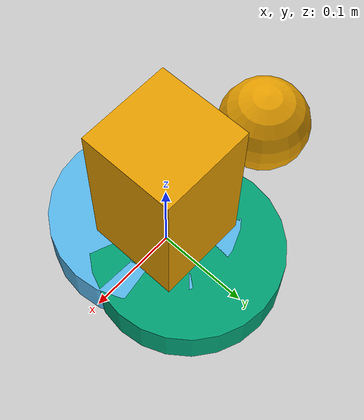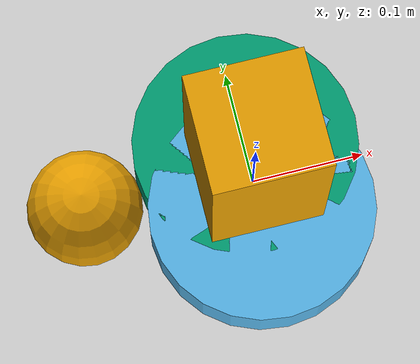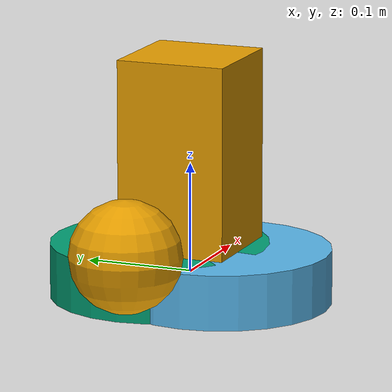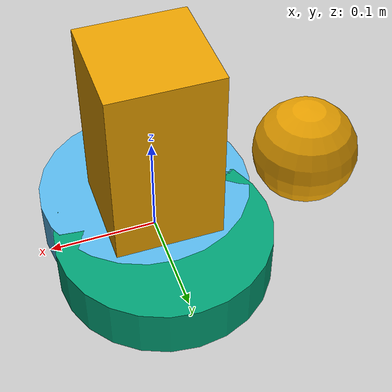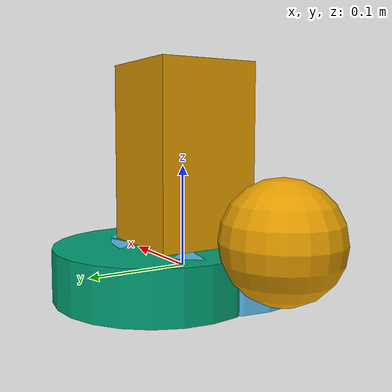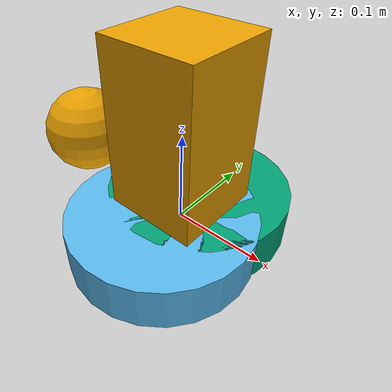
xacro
<?xml version="1.0"?>

<robot name="pioneer" xmlns:xacro="http://ros.org/wiki/xacro">
  <xacro:property name="mass" value="0.5755" />
  <xacro:property name="body_width" value="0.1" />
  <xacro:property name="body_height" value="0.2" />
  <xacro:property name="body_length" value="0.4" />
  <xacro:property name="wheel_radius" value="0.1" />
  <xacro:property name="wheel_length" value="0.06" />
  <xacro:property name="caster_radius" value="0.05" />
  <xacro:property name="body_inertia">
    <inertia ixx="0.007" ixy="0.0" ixz="0.0" iyy="0.007" iyz="0.0" izz="0.012" />
  </xacro:property>

  <link name="chassis">
    <inertial>
      <mass value="${mass}" />
      <origin xyz="0 0 0.1"/>
      <xacro:insert_block name="body_inertia"/>
    </inertial>

    <visual name='visual'>
      <origin xyz="0 0 0.1" rpy="0 0 0" />
      <geometry>
        <box size="${body_width} ${body_width} ${body_height}"/>
      </geometry>
    </visual>
    <visual name='visual_caster'>
      <origin xyz="-0.15 0 0.05" rpy="0 0 0" />
      <geometry>
        <sphere radius="${caster_radius}"/>
      </geometry>
    </visual>

    <collision name='collision'>
      <origin xyz="0 0 0.1" rpy="0 0 0" />
      <geometry>
        <box size="${body_width} ${body_width} ${body_height}" />
      </geometry>
    </collision>
    <collision name='collision_caster'>
      <origin xyz="0 0 0.1" rpy="0 0 0" />
      <contact_coefficients mu="0"/>
      <geometry>
        <sphere radius="${caster_radius}"/>
      </geometry>
    </collision>
  </link>

  <link name="right_wheel">
    <inertial>
      <mass value="0.1" />
      <origin xyz="0.1 -0.13 0.1" rpy="0 1.5707 1.5707"/>
      <inertia ixx="0.01" ixy="0.0" ixz="0.0" iyy="0.01" iyz="0.0" izz="0.2"/>
    </inertial>

    <visual name="visual">
      <geometry>
        <cylinder length="0.05" radius="0.1"/>
      </geometry>
    </visual>

    <collision name="collision">
      <geometry>
        <cylinder length="0.05" radius="0.1"/>
      </geometry>
    </collision>
  </link>

  <link name="left_wheel">
    <inertial>
      <mass value="0.1" />
      <origin xyz="0.1 0.13 0.1" rpy="0 1.5707 1.5707"/>
      <inertia ixx="0.01" ixy="0.0" ixz="0.0" iyy="0.01" iyz="0.0" izz="0.2"/>
    </inertial>

    <visual name="visual">
      <geometry>
        <cylinder length="0.05" radius="0.1"/>
      </geometry>
    </visual>

    <collision name="collision">
      <geometry>
        <cylinder length="0.05" radius="0.1"/>
      </geometry>
    </collision>
  </link>

  <joint name="left_wheel_joint" type="revolute">
    <axis xyz="0 1 0"/>
    <limit effort="1000.0" velocity="0.5"/>
    <origin rpy="0 0 0" xyz="0 0.03 0"/>
    <parent link="chassis"/>
    <child link="left_wheel"/>
  </joint>

  <joint name="right_wheel_joint" type="revolute">
    <axis xyz="0 1 0"/>
    <limit effort="1000.0" velocity="0.5"/>
    <origin rpy="0 0 0" xyz="0 -0.03 0"/>
    <parent link="chassis"/>
    <child link="right_wheel"/>
  </joint>

</robot>
